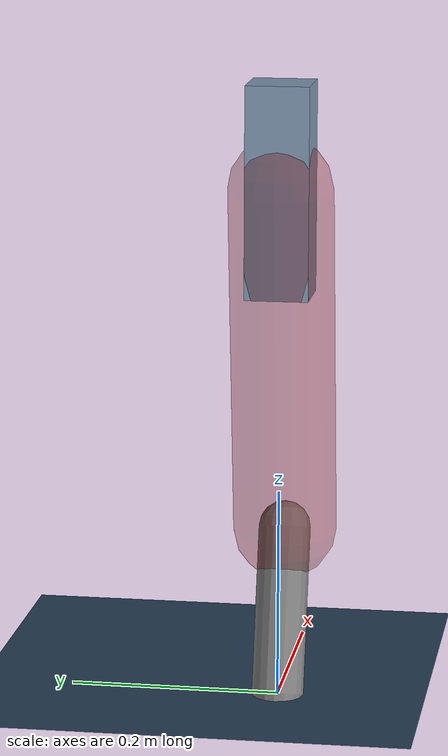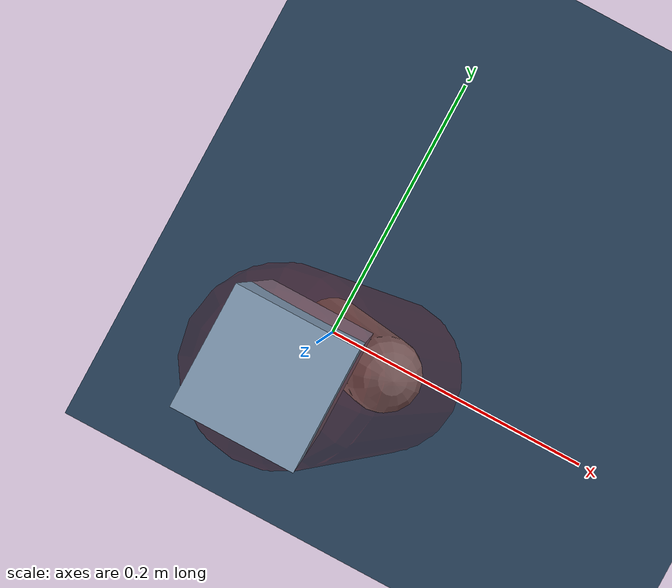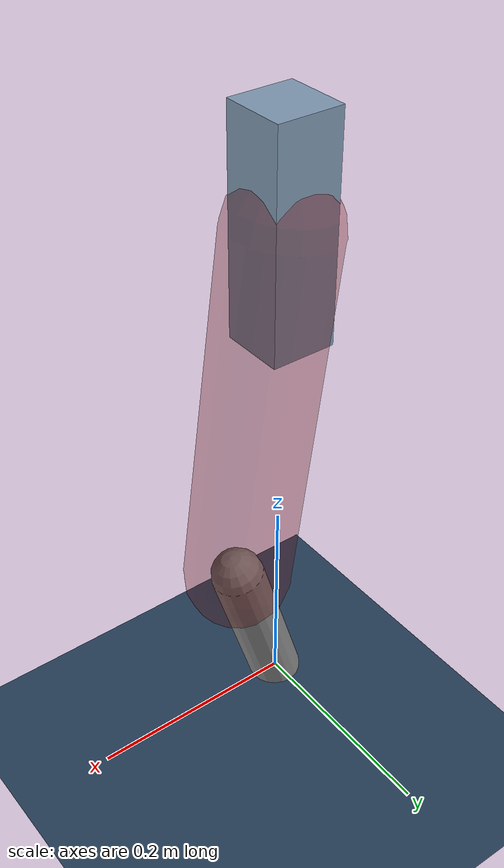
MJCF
<mujoco model="Hopper2D">
	<compiler inertiafromgeom="true" angle="radian" />
	<option timestep="0.001" integrator="implicit" cone="elliptic" solver="Newton" tolerance="1e-10" />

	<default>
		<geom contype="1" conaffinity="1" condim="3" friction="2 0.005 0.0001" solref="0.005 1" />
		<joint limited="true" damping="0.1" />
	</default>

	<asset>
		<texture name="skybox" type="skybox" builtin="gradient" rgb1=".4 .6 .8" rgb2="0 0 0" width="800" height="800" />
		<texture name="grid" type="2d" builtin="checker" rgb1=".1 .2 .3" rgb2=".2 .3 .4" width="300" height="300" mark="edge" markrgb=".2 .3 .4" />
		<material name="ground" texture="grid" texrepeat="1 1" texuniform="true" reflectance="0.1" />
		<material name="leg" rgba="0.5 0.6 0.7 1" />
	</asset>

	<worldbody>

		<geom name="floor" type="plane" size="5 5 0.25" material="ground" />

		<light directional="false" diffuse="0.8 0.8 0.8" specular="0.3 0.3 0.3" pos="0 0 2" dir="0 0 -1" />
		<light mode="targetbodycom" target="base" directional="false" diffuse="0.8 0.8 0.8" specular="0.3 0.3 0.3" pos="0 0 2" dir="0 0 -1" />

		<camera name="fixed" pos="0 -2 1" xyaxes="1 0 0 0 0 1" />
		<camera name="tracking" mode="trackcom" pos="0 -3 1" />

		<body name="root" pos="0 0 0.48957735317738205">
			<joint name="slide_x" type="slide" axis="1 0 0" range="-100 100" />
			<joint name="slide_z" type="slide" axis="0 0 1" range="0 10" />

			<body name="base" pos="0 0 0">
				<geom name="torso" type="box" size="0.03 0.03 0.1" mass="4.026" material="leg" />

				<body name="link1" pos="0 0 0" euler="0 1.433803253107286 0">
					<joint type="hinge" axis="0 -1 0" pos="0 0 0" name="hinge1" limited="true" range="-3.14 3.14" stiffness="0" damping="0.1" />
					<geom name="thigh" type="capsule" fromto="0 0 0 0.3390582973921528 0 0" size="0.05" rgba="0.5 0 0 0.3" mass="1.096063232698028" />

					<body name="link2" pos="0.3390582973921528 0 0" euler="0 0.4296122151751532 0">
						<joint type="hinge" axis="0 -1 0" pos="0 0 0" name="hinge2" limited="true" range="-3.14 3.14" stiffness="0" damping="0.1" />
						<geom name="shank" type="capsule" fromto="0 0 0 0.16051905578522924 0 0" size="0.025" mass="0.36701524462818336" />

					</body>
				</body>
			</body>
		</body>
	</worldbody>

	<actuator>
		<motor name="torque1" joint="hinge1" ctrlrange="-197.08851169375305 197.08851169375305" ctrllimited="true" gear="1" />
		<motor name="torque2" joint="hinge2" ctrlrange="-106.88239973065137 106.88239973065137" ctrllimited="true" gear="1" />
	</actuator>
</mujoco>
